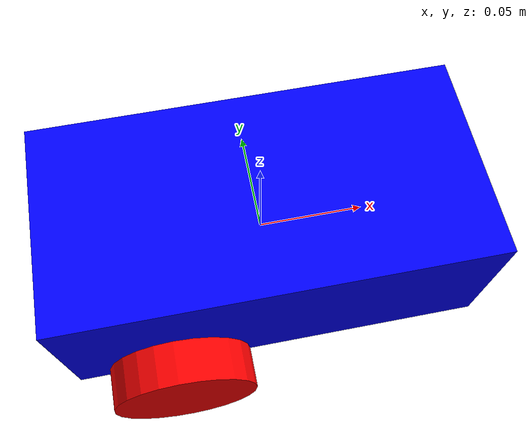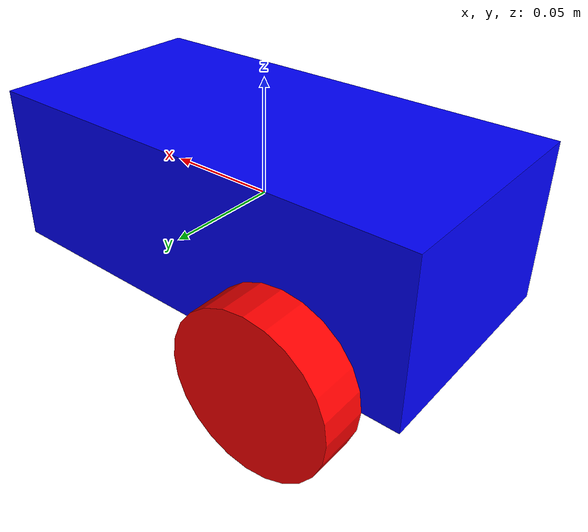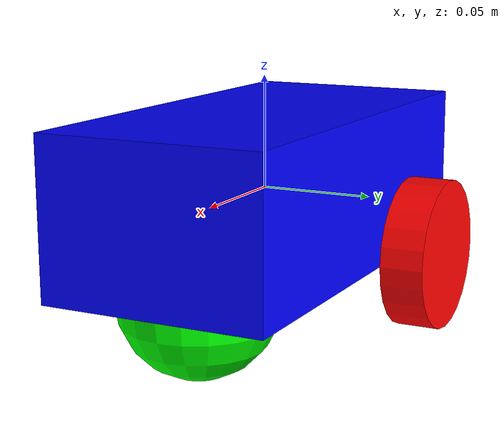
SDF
<?xml version="1.0" ?>
<sdf version="1.8">
    <model name='default_robot' canonical_link='base_link'>
        <!-- Plugins -->
        <!-- Sensors Plugin -->
        <plugin
            filename="gz-sim-sensors-system"
            name="gz::sim::systems::Sensors">
            <render_engine>ogre2</render_engine>
        </plugin>
        <!-- IMU Plugin -->
        <plugin
            filename="gz-sim-imu-system"
            name="gz::sim::systems::Imu">
        </plugin>
        <!-- Diff Drive Plugin -->
        <plugin
            filename="gz-sim-diff-drive-system"
            name="gz::sim::systems::DiffDrive">
            <left_joint>left_wheel_joint</left_joint>
            <right_joint>right_wheel_joint</right_joint>
            <wheel_separation>0.12</wheel_separation>
            <wheel_radius>0.035</wheel_radius>
            <odom_publish_frequency>10</odom_publish_frequency>
            <topic>cmd_vel</topic>
        </plugin>
        <!-- Moving Forward-->
        <plugin
            filename="gz-sim-triggered-publisher-system"
            name="gz::sim::systems::TriggeredPublisher">
            <input type="gz.msgs.Int32" topic="/keyboard/keypress">
                <match field="data">16777235</match>
            </input>
            <output type="gz.msgs.Twist" topic="/cmd_vel">
                linear: {x: 0.5}, angular: {z: 0.0}
            </output>
        </plugin>
        <!-- Moving Backward-->
        <plugin
            filename="gz-sim-triggered-publisher-system"
            name="gz::sim::systems::TriggeredPublisher">
            <input type="gz.msgs.Int32" topic="/keyboard/keypress">
                <match field="data">16777237</match>
            </input>
            <output type="gz.msgs.Twist" topic="/cmd_vel">
                linear: {x: -0.5}, angular: {z: 0.0}
            </output>
        </plugin>
        <!-- Turning Left-->
        <plugin
            filename="gz-sim-triggered-publisher-system"
            name="gz::sim::systems::TriggeredPublisher">
            <input type="gz.msgs.Int32" topic="/keyboard/keypress">
                <match field="data">16777234</match>
            </input>
            <output type="gz.msgs.Twist" topic="/cmd_vel">
                linear: {x: 0.0}, angular: {z: 0.5}
            </output>
        </plugin>
        <!-- Turning Right-->
        <plugin
            filename="gz-sim-triggered-publisher-system"
            name="gz::sim::systems::TriggeredPublisher">
            <input type="gz.msgs.Int32" topic="/keyboard/keypress">
                <match field="data">16777236</match>
            </input>
            <output type="gz.msgs.Twist" topic="/cmd_vel">
                linear: {x: 0.0}, angular: {z: -0.5}
            </output>
        </plugin>
        <!-- Pose Publisher Plugin -->
        <plugin
            filename="gz-sim-pose-publisher-system"
            name="gz::sim::systems::PosePublisher">
            <publish_link_pose>true</publish_link_pose>
            <publish_visual_pose>false</publish_visual_pose>
            <publish_joint_pose>true</publish_joint_pose>
            <update_frequency>50</update_frequency>
            <use_pose_vector_msg>true</use_pose_vector_msg>
            <static_publisher>true</static_publisher>
            <static_update_frequency>1</static_update_frequency>
        </plugin>

        <frame name="lidar_frame" attached_to='base_link'>
            <pose>0.06 0 0.045 0 0 0</pose>
        </frame>
        <frame name="imu_frame" attached_to='base_link'>
            <pose>0 0 0.045 0 0 0</pose>
        </frame>

        <!-- Links -->
        <link name='base_link'>
            <pose relative_to='__model__'>0 0 0 0 0 0</pose>
            <inertial>
                <mass>5.0</mass>
                <inertia>
                    <ixx>0.006208333</ixx>
                    <ixy>0</ixy>
                    <ixz>0</ixz>
                    <iyy>0.018708333</iyy>
                    <iyz>0</iyz>
                    <izz>0.020833333</izz>
                </inertia>
            </inertial>
            <visual name='visual'>
                <geometry>
                    <box>
                        <size>0.2 0.1 0.07</size>
                    </box>
                </geometry>
                <material>
                    <ambient>0.0 0.0 1.0 1</ambient>
                    <diffuse>0.0 0.0 1.0 1</diffuse>
                    <specular>0.0 0.0 1.0 1</specular>
                </material>
            </visual>
            <collision name='collision'>
                <geometry>
                    <box>
                        <size>0.2 0.1 0.07</size>
                    </box>
                </geometry>
            </collision>

            <!-- IMU Sensor -->
            <sensor name="imu_sensor" type="imu">
                <pose relative_to='imu_frame'>0 0 0 0 0 0</pose>
                <frame_id>imu_frame</frame_id>
                <topic>sensors/imu</topic>
                <update_rate>10</update_rate>
                <always_on>1</always_on>
                <visualize>true</visualize>
            </sensor>
            <!-- Lidar Sensor -->
            <sensor name='lidar_sensor' type='gpu_lidar'>
                <pose relative_to='lidar_frame'>0 0 0 0 0 0</pose>
                <frame_id>lidar_frame</frame_id>
                <topic>sensors/lidar</topic>
                <update_rate>10</update_rate>
                <ray>
                    <scan>
                        <horizontal>
                            <samples>100</samples>
                            <resolution>1</resolution>
                            <min_angle>-1.396263</min_angle>
                            <max_angle>1.396263</max_angle>
                        </horizontal>
                        <vertical>
                            <samples>1</samples>
                            <resolution>0.01</resolution>
                            <min_angle>0</min_angle>
                            <max_angle>0</max_angle>
                        </vertical>
                    </scan>
                    <range>
                        <min>0.08</min>
                        <max>10.0</max>
                        <resolution>0.01</resolution>
                    </range>
                    <noise>
                        <type>gaussian</type>
                        <mean>0.0</mean>
                        <stddev>0.05</stddev>
                    </noise>
                </ray>
                <always_on>1</always_on>
                <visualize>true</visualize>
            </sensor>
        </link>

        <link name='left_wheel'>
            <pose relative_to="base_link">-0.05 0.06 -0.035 -1.5707 0 0</pose>
            <inertial>
                <mass>0.5</mass>
                <inertia>
                    <ixx>0.000169792</ixx>
                    <ixy>0</ixy>
                    <ixz>0</ixz>
                    <iyy>0.000169792</iyy>
                    <iyz>0</iyz>
                    <izz>0.00030625</izz>
                </inertia>
            </inertial>
            <visual name='visual'>
                <geometry>
                    <cylinder>
                        <radius>0.035</radius>
                        <length>0.02</length>
                    </cylinder>
                </geometry>
                <material>
                    <ambient>1.0 0.0 0.0 1</ambient>
                    <diffuse>1.0 0.0 0.0 1</diffuse>
                    <specular>1.0 0.0 0.0 1</specular>
                </material>
            </visual>
            <collision name='collision'>
                <geometry>
                    <cylinder>
                        <radius>0.035</radius>
                        <length>0.02</length>
                    </cylinder>
                </geometry>
            </collision>
        </link>
        <link name='right_wheel'>
            <pose relative_to="base_link">-0.05 -0.06 -0.035 -1.5707 0 0</pose>
            <inertial>
                <mass>0.5</mass>
                <inertia>
                    <ixx>0.000169792</ixx>
                    <ixy>0</ixy>
                    <ixz>0</ixz>
                    <iyy>0.000169792</iyy>
                    <iyz>0</iyz>
                    <izz>0.00030625</izz>
                </inertia>
            </inertial>
            <visual name='visual'>
                <geometry>
                    <cylinder>
                        <radius>0.035</radius>
                        <length>0.02</length>
                    </cylinder>
                </geometry>
                <material>
                    <ambient>1.0 0.0 0.0 1</ambient>
                    <diffuse>1.0 0.0 0.0 1</diffuse>
                    <specular>1.0 0.0 0.0 1</specular>
                </material>
            </visual>
            <collision name='collision'>
                <geometry>
                    <cylinder>
                        <radius>0.035</radius>
                        <length>0.02</length>
                    </cylinder>
                </geometry>
            </collision>
        </link>
        <link name='caster_wheel'>
            <pose relative_to='base_link'>0.06 0 -0.035 0 0 0</pose>
            <inertial>
                <mass>0.25</mass>
                <inertia>
                    <ixx>0.0001225</ixx>
                    <ixy>0</ixy>
                    <ixz>0</ixz>
                    <iyy>0.0001225</iyy>
                    <iyz>0</iyz>
                    <izz>0.0001225</izz>
                </inertia>
            </inertial>
            <visual name='visual'>
                <geometry>
                    <sphere>
                        <radius>0.035</radius>
                    </sphere>
                </geometry>
                <material>
                    <ambient>0.0 1 0.0 1</ambient>
                    <diffuse>0.0 1 0.0 1</diffuse>
                    <specular>0.0 1 0.0 1</specular>
                </material>
            </visual>
            <collision name='collision'>
                <geometry>
                    <sphere>
                        <radius>0.035</radius>
                    </sphere>
                </geometry>
            </collision>
        </link>

        <!-- Joints -->
        <joint name='left_wheel_joint' type='revolute'>
            <pose relative_to='left_wheel'/>
            <parent>base_link</parent>
            <child>left_wheel</child>
            <axis>
                <xyz expressed_in='__model__'>0 1 0</xyz> <!--can be descired to any frame or even arbitrary frames-->
                <limit>
                    <lower>-1.79769e+308</lower>    <!--negative infinity-->
                    <upper>1.79769e+308</upper>     <!--positive infinity-->
                </limit>
            </axis>
        </joint>
        <joint name='right_wheel_joint' type='revolute'>
            <pose relative_to='right_wheel'/>
            <parent>base_link</parent>
            <child>right_wheel</child>
            <axis>
                <xyz expressed_in='__model__'>0 1 0</xyz>
                <limit>
                    <lower>-1.79769e+308</lower>    <!--negative infinity-->
                    <upper>1.79769e+308</upper>     <!--positive infinity-->
                </limit>
            </axis>
        </joint>
        <joint name='caster_wheel_joint' type='ball'>
            <pose relative_to='caster_wheel'/>
            <parent>base_link</parent>
            <child>caster_wheel</child>
        </joint>
    </model>
</sdf>
